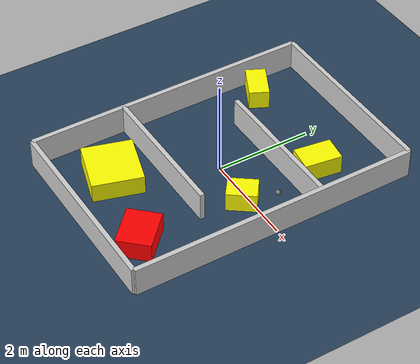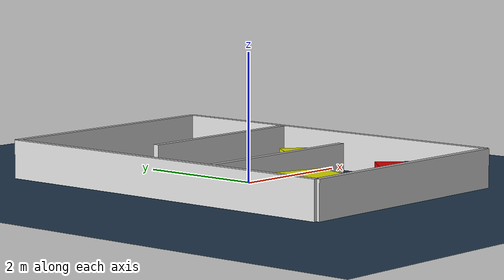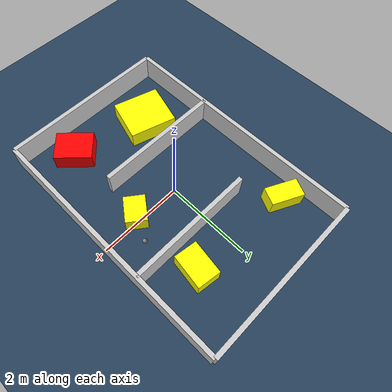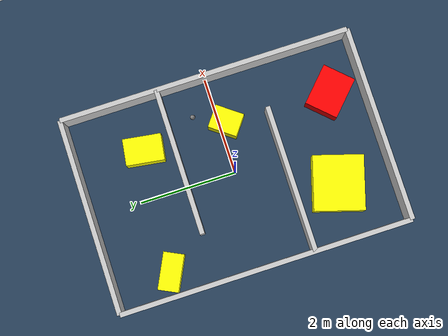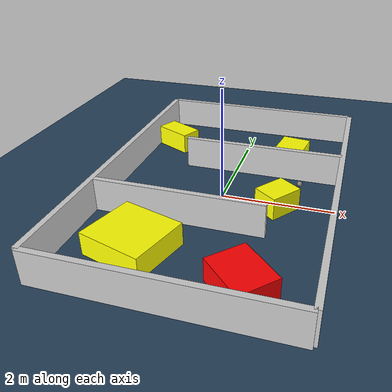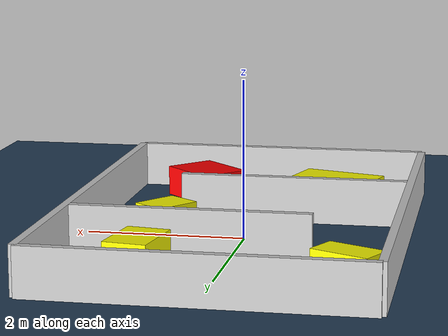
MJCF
<?xml version="1.0" ?>
<mujoco model="generated_environment">
  <option timestep="0.01" integrator="RK4" cone="elliptic"/>
  <default>
    <geom density="1"/>
  </default>
  <asset>
    <texture builtin="gradient" height="3072" rgb1="0.3 0.5 0.7" rgb2="0 0 0" type="skybox" width="512"/>
    <texture builtin="checker" height="300" mark="edge" markrgb="0.8 0.8 0.8" name="groundplane" rgb1="0.2 0.3 0.4" rgb2="0.1 0.2 0.3" type="2d" width="300"/>
    <material name="groundplane" reflectance="0.2" texrepeat="5 5" texture="groundplane" texuniform="true"/>
    <material name="robot" rgba="0.0 1.0 0.0 1"/>
  </asset>
  <worldbody>
    <light dir="0 0 -1" directional="true" pos="0 0 1.5"/>
    <geom condim="4" friction="1.0 0.005 0.001" material="groundplane" name="floor" size="0 0 0.05" type="plane"/>
    <body name="walls">
      <geom name="wall_1" condim="4" pos="-2.0 0.0 0.3" rgba="0.800000011920929 0.800000011920929 0.800000011920929 1.0" size="0.05 3.0 0.3" type="box"/>
      <geom name="wall_2" condim="4" pos="2.0 0.0 0.3" rgba="0.800000011920929 0.800000011920929 0.800000011920929 1.0" size="0.05 3.0 0.3" type="box"/>
      <geom name="wall_3" condim="4" pos="0.0 -3.0 0.3" rgba="0.800000011920929 0.800000011920929 0.800000011920929 1.0" size="2.0 0.05 0.3" type="box"/>
      <geom name="wall_4" condim="4" pos="0.0 3.0 0.3" rgba="0.800000011920929 0.800000011920929 0.800000011920929 1.0" size="2.0 0.05 0.3" type="box"/>
      <geom name="wall_5" condim="4" pos="-0.5 -1.0 0.3" rgba="0.800000011920929 0.800000011920929 0.800000011920929 1.0" size="1.5 0.05 0.3" type="box"/>
      <geom name="wall_6" condim="4" pos="0.5 1.0 0.3" rgba="0.800000011920929 0.800000011920929 0.800000011920929 1.0" size="1.5 0.05 0.3" type="box"/>
    </body>
    <body name="robot">
      <joint name="joint_x" type="slide" pos="0 0 0" axis="1 0 0"/>
      <joint name="joint_y" type="slide" pos="0 0 0" axis="0 1 0"/>
      <geom name="robot" type="sphere" pos="1.31958497137748 0.47419627664830744 0.2" size="0.05" mass="5." friction="1.0 0.005 0.0001" condim="4"/>
      <site name="sensor_ball"/>
    </body>
    <body name="obstacle_1_movable">
      <geom name="obstacle_1_movable" condim="4" pos="1.019842335981623 -0.1372944345060194 0.2" euler="0 0 233.09374517960967" friction="1.0 0.005 0.001" rgba="1 1 0 1" size="0.3010532663321087 0.23958071111051363 0.2" type="box" mass="0.1"/>
      <joint type="free"/>
    </body>
    <body name="obstacle_2_static">
      <geom name="obstacle_2_static" condim="4" pos="0.9381051965677103 -2.3100062090128435 0.2" euler="0 0 46.32327219221124" friction="1.0 0.005 0.001" rgba="1 0 0 1" size="0.3450175845473006 0.4336572975043156 0.2" type="box"/>
    </body>
    <body name="obstacle_3_movable">
      <geom name="obstacle_3_movable" condim="4" pos="0.9726508975709847 1.6072513293750958 0.2" euler="0 0 81.61587237165254" friction="1.0 0.005 0.001" rgba="1 1 0 1" size="0.390124639031103 0.27074709770158 0.2" type="box" mass="0.1"/>
      <joint type="free"/>
    </body>
    <body name="obstacle_4_movable">
      <geom name="obstacle_4_movable" condim="4" pos="-0.8613333346622962 -1.886444223727781 0.2" euler="0 0 253.26735422819556" friction="1.0 0.005 0.001" rgba="1 1 0 1" size="0.5149885161247989 0.5611081487890421 0.2" type="box" mass="0.1"/>
      <joint type="free"/>
    </body>
    <body name="obstacle_5_movable">
      <geom name="obstacle_5_movable" condim="4" pos="-1.5104300839424203 1.8197460675486483 0.2" euler="0 0 63.6850352299824" friction="1.0 0.005 0.001" rgba="1 1 0 1" size="0.20903813524099332 0.3799441820242223 0.2" type="box" mass="0.1"/>
      <joint type="free"/>
    </body>
  </worldbody>
  <actuator>
    <motor name="actuator_x" joint="joint_x" gear="1" ctrlrange="-1 1"/>
    <motor name="actuator_y" joint="joint_y" gear="1" ctrlrange="-1 1"/>
  </actuator>
</mujoco>
